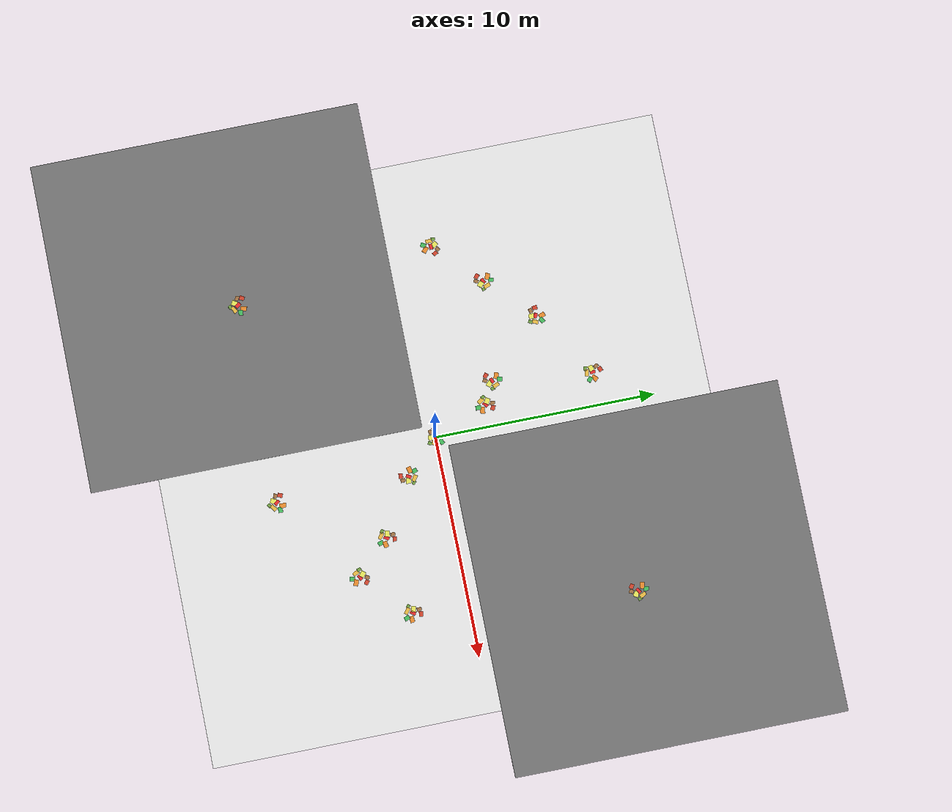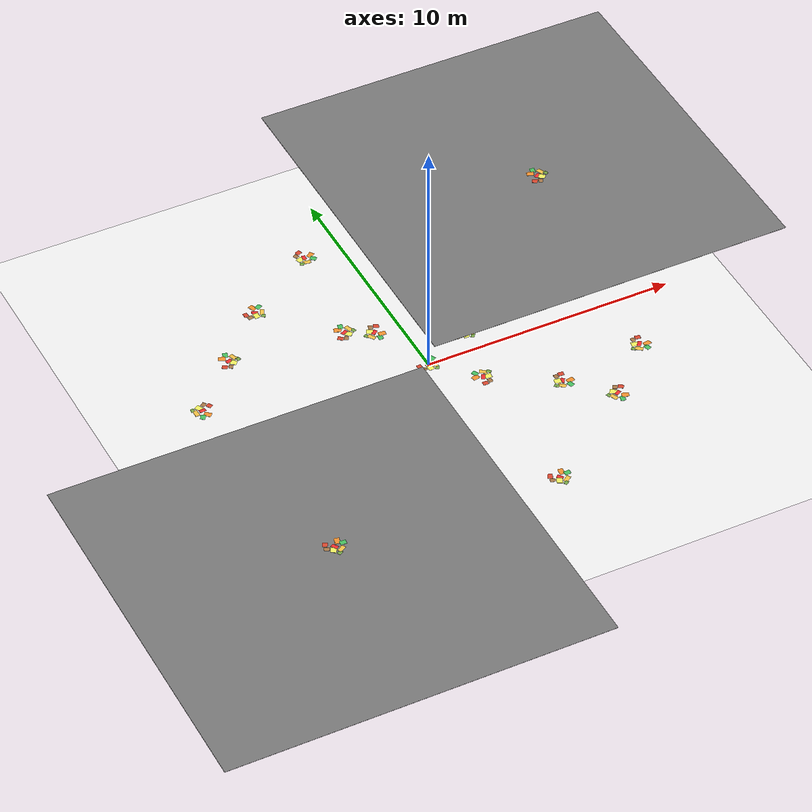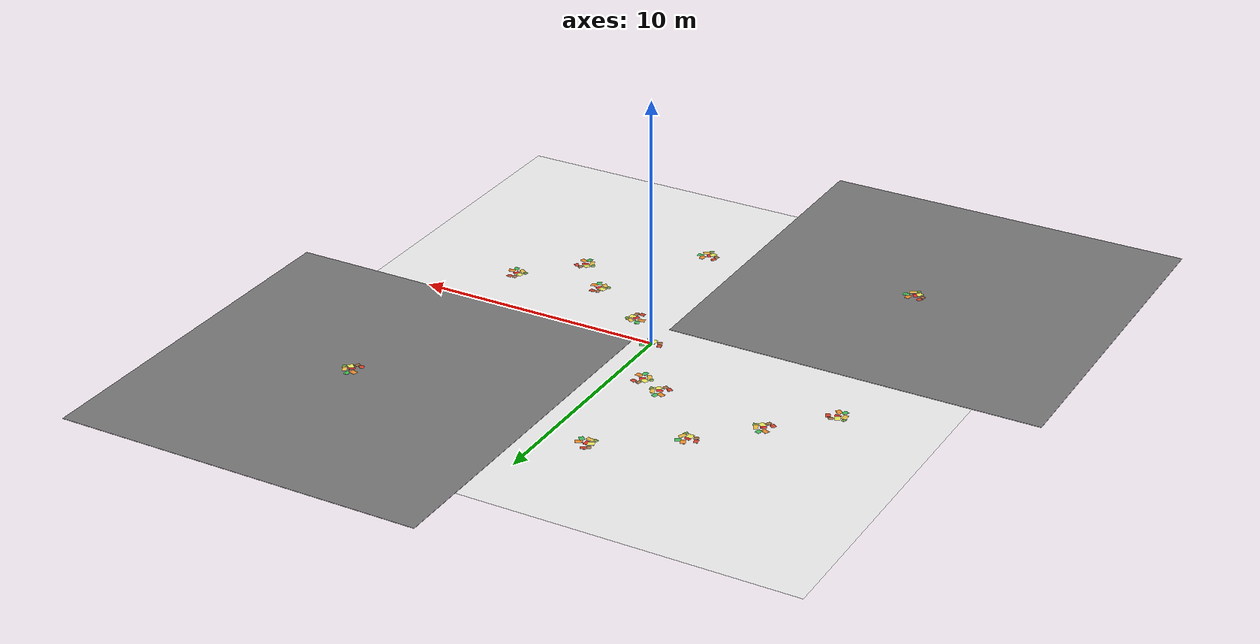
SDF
<sdf version="1.8">
 <world name="mixed_terrain">
  <plugin name="ignition::gazebo::systems::Physics" filename="ignition-gazebo-physics-system"/>
  <plugin name="ignition::gazebo::systems::UserCommands" filename="ignition-gazebo-user-commands-system"/>
  <plugin name="ignition::gazebo::systems::SceneBroadcaster" filename="ignition-gazebo-scene-broadcaster-system"/>
  <plugin name="ignition::gazebo::systems::Contact" filename="ignition-gazebo-contact-system"/>
  <gravity>0 0 -9.81</gravity>
  <magnetic_field>6e-06 2.3e-05 -4.2e-05</magnetic_field>
  <atmosphere type="adiabatic"/>
  <physics name="default_physics" type="ignored">
   <max_step_size>0.01</max_step_size>
   <real_time_factor>1</real_time_factor>
   <real_time_update_rate>100</real_time_update_rate>
  </physics>
  <scene><ambient>0.9 0.9 0.8 1</ambient><background>0.6 0.8 1.0 1</background><shadows>1</shadows></scene>
  <spherical_coordinates>
   <latitude_deg>-33.8847</latitude_deg>
   <longitude_deg>151.2059</longitude_deg>
   <elevation>10.0</elevation>
   <heading_deg>0</heading_deg>
   <surface_model>EARTH_WGS84</surface_model>
  </spherical_coordinates>
  <include><uri>model://forest_plane</uri><name>forest_ground_main</name></include>
  <include><uri>model://grass_plane</uri><name>grass_elevated_1</name><pose>-8 -8 0.5 0 0 0</pose></include>
  <include><uri>model://grass_plane</uri><name>grass_elevated_2</name><pose>8 8 0.3 0 0 0</pose></include>
  <include>
   <uri>file:///home/student/git/FIREWARDENBOT/World/41068_ws/src/models/autumn_leaves</uri>
   <name>leaves_oak_1</name>
   <pose>-2.5 0.5 -0.195 0 0 0.8</pose>
  </include>
  <include>
   <uri>file:///home/student/git/FIREWARDENBOT/World/41068_ws/src/models/autumn_leaves</uri>
   <name>leaves_oak_2</name>
   <pose>3.5 -0.5 -0.195 0 0 1.5</pose>
  </include>
  <include>
   <uri>file:///home/student/git/FIREWARDENBOT/World/41068_ws/src/models/autumn_leaves</uri>
   <name>leaves_hill_1</name>
   <pose>-7.5 -7.5 0.505 0 0 0.3</pose>
  </include>
  <include>
   <uri>file:///home/student/git/FIREWARDENBOT/World/41068_ws/src/models/autumn_leaves</uri>
   <name>leaves_hill_2</name>
   <pose>8.5 7.5 0.305 0 0 1.8</pose>
  </include>
  <include>
   <uri>file:///home/student/git/FIREWARDENBOT/World/41068_ws/src/models/autumn_leaves</uri>
   <name>leaves_hill_3</name>
   <pose>-5.5 -9.5 0.405 0 0 -0.7</pose>
  </include>
  <include>
   <uri>file:///home/student/git/FIREWARDENBOT/World/41068_ws/src/models/autumn_leaves</uri>
   <name>leaves_open_1</name>
   <pose>0 0 0.005 0 0 0.9</pose>
  </include>
  <include>
   <uri>file:///home/student/git/FIREWARDENBOT/World/41068_ws/src/models/autumn_leaves</uri>
   <name>leaves_open_2</name>
   <pose>3 2 0.005 0 0 -1.4</pose>
  </include>
  <include>
   <uri>file:///home/student/git/FIREWARDENBOT/World/41068_ws/src/models/autumn_leaves</uri>
   <name>leaves_open_3</name>
   <pose>-2 3 0.005 0 0 1.7</pose>
  </include>
  <include>
   <uri>file:///home/student/git/FIREWARDENBOT/World/41068_ws/src/models/autumn_leaves</uri>
   <name>leaves_open_4</name>
   <pose>4 -3 0.005 0 0 -0.9</pose>
  </include>
  <include>
   <uri>file:///home/student/git/FIREWARDENBOT/World/41068_ws/src/models/autumn_leaves</uri>
   <name>leaves_open_5</name>
   <pose>-4 -2 0.005 0 0 2.1</pose>
  </include>
  <include>
   <uri>file:///home/student/git/FIREWARDENBOT/World/41068_ws/src/models/autumn_leaves</uri>
   <name>leaves_transition_1</name>
   <pose>-4.5 5.5 0.005 0 0 0.9</pose>
  </include>
  <include>
   <uri>file:///home/student/git/FIREWARDENBOT/World/41068_ws/src/models/autumn_leaves</uri>
   <name>leaves_transition_2</name>
   <pose>5.5 -4.5 0.005 0 0 -1.4</pose>
  </include>
  <include>
   <uri>file:///home/student/git/FIREWARDENBOT/World/41068_ws/src/models/autumn_leaves</uri>
   <name>leaves_transition_3</name>
   <pose>6.5 4.5 0.005 0 0 0.6</pose>
  </include>
  <include>
   <uri>file:///home/student/git/FIREWARDENBOT/World/41068_ws/src/models/autumn_leaves</uri>
   <name>leaves_transition_4</name>
   <pose>-3.5 -5.5 0.005 0 0 -2.1</pose>
  </include>
  <include>
   <uri>file:///home/student/git/FIREWARDENBOT/World/41068_ws/src/models/autumn_leaves</uri>
   <name>leaves_random_1</name>
   <pose>-6.5 3.5 0.005 0 0 1.7</pose>
  </include>
  <include>
   <uri>file:///home/student/git/FIREWARDENBOT/World/41068_ws/src/models/autumn_leaves</uri>
   <name>leaves_random_2</name>
   <pose>7.5 -2.5 0.005 0 0 -0.9</pose>
  </include>
  <include>
   <uri>file:///home/student/git/FIREWARDENBOT/World/41068_ws/src/models/autumn_leaves</uri>
   <name>leaves_random_3</name>
   <pose>2.5 6.5 0.005 0 0 1.3</pose>
  </include>
  <include>
   <uri>file:///home/student/git/FIREWARDENBOT/World/41068_ws/src/models/autumn_leaves</uri>
   <name>leaves_random_4</name>
   <pose>-8.5 1.5 0.005 0 0 -1.8</pose>
  </include>
  <include>
   <uri>file:///home/student/git/FIREWARDENBOT/World/41068_ws/src/models/autumn_leaves</uri>
   <name>leaves_random_5</name>
   <pose>1.5 -7.5 0.005 0 0 0.4</pose>
  </include>
  <include>
   <uri>file:///home/student/git/FIREWARDENBOT/World/41068_ws/src/models/autumn_leaves</uri>
   <name>leaves_random_6</name>
   <pose>-1.5 7.5 0.005 0 0 -0.4</pose>
  </include>
  <include>
   <uri>file:///home/student/git/FIREWARDENBOT/World/41068_ws/src/models/autumn_leaves</uri>
   <name>leaves_spawn_1</name>
   <pose>2 1 0.005 0 0 0.8</pose>
  </include>
  <include>
   <uri>file:///home/student/git/FIREWARDENBOT/World/41068_ws/src/models/autumn_leaves</uri>
   <name>leaves_spawn_2</name>
   <pose>-1 2.5 0.005 0 0 -1.2</pose>
  </include>
  <include>
   <uri>file:///home/student/git/FIREWARDENBOT/World/41068_ws/src/models/autumn_leaves</uri>
   <name>leaves_spawn_3</name>
   <pose>1.5 -1.5 0.005 0 0 2.3</pose>
  </include>
 </world>
</sdf>

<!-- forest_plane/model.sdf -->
<sdf version="1.7">
  <model name="forest_plane">
    <!-- it’s the floor, so keep it static -->
    <static>true</static>

    <link name="link">
      <!-- REAL collision: flat plane 25x25 -->
      <collision name="collision">
        <geometry>
          <plane>
            <normal>0 0 1</normal>
            <size>25 25</size>
          </plane>
        </geometry>
      </collision>

      <!-- visual: same size, with your texture -->
      <visual name="visual">
        <cast_shadows>false</cast_shadows>
        <geometry>
          <plane>
            <normal>0 0 1</normal>
            <size>25 25</size>
          </plane>
        </geometry>
        <material>
          <ambient>1.0 1.0 1.0 1</ambient>
          <diffuse>1.0 1.0 1.0 1</diffuse>
          <pbr>
            <metal>
              <!-- keep your texture path here -->
              <albedo_map>model://forest_plane/materials/textures/forest_overhead.png</albedo_map>
            </metal>
          </pbr>
        </material>
      </visual>
    </link>
  </model>
</sdf>

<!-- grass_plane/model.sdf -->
<sdf version="1.7">
  <model name="grass_plane">
    <static>true</static>
    <link name="link">
      <!-- REAL collision: flat plane 15x15 -->
      <collision name="collision">
        <geometry>
          <plane>
            <normal>0 0 1</normal>
            <size>15 15</size>
          </plane>
        </geometry>
      </collision>

      <!-- visual can stay the way you had it -->
      <visual name="visual">
        <geometry>
          <plane>
            <normal>0 0 1</normal>
            <size>15 15</size>
          </plane>
        </geometry>
        <material>
          <ambient>0.5 0.5 0.5 1</ambient>
          <diffuse>0.5 0.5 0.5 1</diffuse>
          <specular>0.2 0.2 0.2 1</specular>
          <pbr>
            <metal>
              <albedo_map>model://grass_plane/materials/textures/empty_grass.png</albedo_map>
            </metal>
          </pbr>
        </material>
      </visual>
    </link>
  </model>
</sdf>

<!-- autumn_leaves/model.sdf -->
<sdf version="1.8">
  <model name="autumn_leaves">
    <static>true</static>

    <!-- Large, colorful autumn leaf cluster -->
    <link name="leaf_cluster">
      <pose>0 0 0.01 0 0 0</pose>

      <!-- Bright Red Dead Leaves -->
      <visual name="red_leaf_1">
        <pose>0 0 0 0 0 0.3</pose>
        <geometry>
          <box>
            <size>0.15 0.25 0.005</size>
          </box>
        </geometry>
        <material>
          <ambient>0.9 0.1 0.1 1</ambient>
          <diffuse>1.0 0.2 0.2 1</diffuse>
          <specular>0.2 0.1 0.1 1</specular>
        </material>
      </visual>
      <visual name="red_leaf_2">
        <pose>-0.2 0.3 0 0 0 -0.8</pose>
        <geometry>
          <box>
            <size>0.18 0.22 0.005</size>
          </box>
        </geometry>
        <material>
          <ambient>0.8 0.2 0.1 1</ambient>
          <diffuse>0.9 0.3 0.2 1</diffuse>
          <specular>0.2 0.1 0.1 1</specular>
        </material>
      </visual>

      <!-- Bright Orange Transitional Leaves -->
      <visual name="orange_leaf_1">
        <pose>0.25 0.15 0 0 0 -0.5</pose>
        <geometry>
          <box>
            <size>0.20 0.28 0.005</size>
          </box>
        </geometry>
        <material>
          <ambient>1.0 0.5 0.1 1</ambient>
          <diffuse>1.0 0.6 0.2 1</diffuse>
          <specular>0.3 0.2 0.1 1</specular>
        </material>
      </visual>
      <visual name="orange_leaf_2">
        <pose>0.1 -0.25 0 0 0 1.8</pose>
        <geometry>
          <box>
            <size>0.17 0.30 0.005</size>
          </box>
        </geometry>
        <material>
          <ambient>1.0 0.7 0.2 1</ambient>
          <diffuse>1.0 0.8 0.3 1</diffuse>
          <specular>0.3 0.2 0.1 1</specular>
        </material>
      </visual>

      <!-- Yellow Autumn Leaves -->
      <visual name="yellow_leaf_1">
        <pose>-0.15 -0.1 0 0 0 2.3</pose>
        <geometry>
          <box>
            <size>0.22 0.26 0.005</size>
          </box>
        </geometry>
        <material>
          <ambient>1.0 0.9 0.2 1</ambient>
          <diffuse>1.0 1.0 0.4 1</diffuse>
          <specular>0.3 0.3 0.1 1</specular>
        </material>
      </visual>

      <!-- Brown Dead Leaves -->
      <visual name="brown_leaf_1">
        <pose>-0.3 0.1 0 0 0 0.9</pose>
        <geometry>
          <box>
            <size>0.16 0.20 0.005</size>
          </box>
        </geometry>
        <material>
          <ambient>0.6 0.4 0.2 1</ambient>
          <diffuse>0.7 0.5 0.3 1</diffuse>
          <specular>0.2 0.1 0.1 1</specular>
        </material>
      </visual>

      <!-- Green Fresh Leaves (still some life) -->
      <visual name="green_leaf_1">
        <pose>0.35 -0.05 0 0 0 1.2</pose>
        <geometry>
          <box>
            <size>0.19 0.24 0.005</size>
          </box>
        </geometry>
        <material>
          <ambient>0.2 0.7 0.3 1</ambient>
          <diffuse>0.3 0.8 0.4 1</diffuse>
          <specular>0.1 0.3 0.1 1</specular>
        </material>
      </visual>
      <visual name="green_leaf_2">
        <pose>-0.08 -0.35 0 0 0 -1.4</pose>
        <geometry>
          <box>
            <size>0.14 0.18 0.005</size>
          </box>
        </geometry>
        <material>
          <ambient>0.4 0.6 0.2 1</ambient>
          <diffuse>0.5 0.7 0.3 1</diffuse>
          <specular>0.1 0.2 0.1 1</specular>
        </material>
      </visual>

    </link>
  </model>
</sdf>
